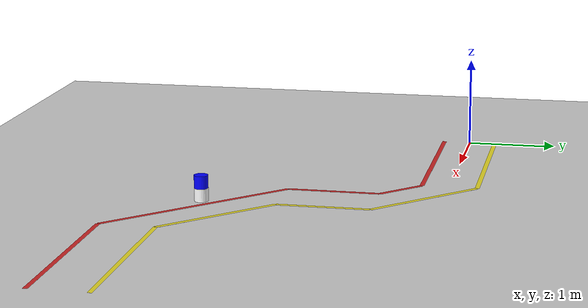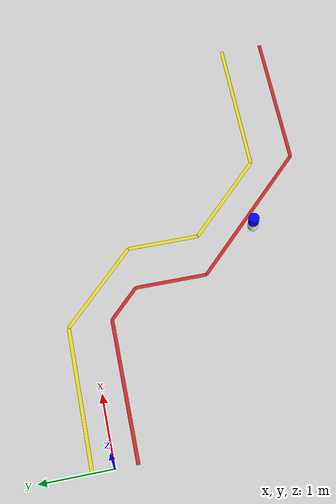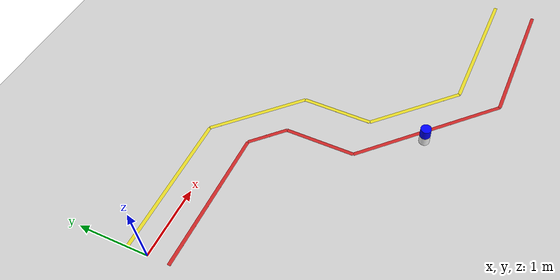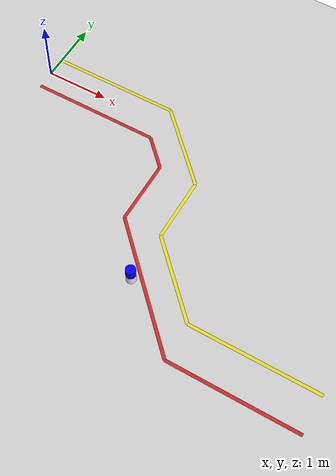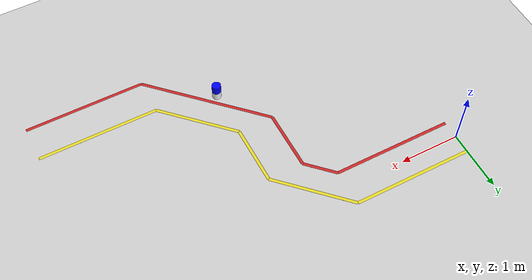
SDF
<sdf version="1.4">
    <world name="default">

        <scene>
            <ambient>0.4 0.4 0.4 1</ambient>
            <background>0.7 0.7 0.7 1</background>
            <shadows>true</shadows>
        </scene>

        <!-- A global light source -->
        <include>
            <uri>model://sun</uri>
        </include>

        <!-- A ground plane -->
        <include>
            <uri>model://ground_plane</uri>
        </include>

        <!-- My Road -->
        <include>
            <uri>model://path</uri>
        </include>

        <physics type="ode">
            <real_time_update_rate>1000.0</real_time_update_rate>
            <max_step_size>0.001</max_step_size>
            <real_time_factor>1</real_time_factor>
            <ode>
                <solver>
                    <type>quick</type>
                    <iters>150</iters>
                    <precon_iters>0</precon_iters>
                    <sor>1.400000</sor>
                    <use_dynamic_moi_rescaling>1</use_dynamic_moi_rescaling>
                </solver>
                <constraints>
                    <cfm>0.00001</cfm>
                    <erp>0.2</erp>
                    <contact_max_correcting_vel>2000.000000</contact_max_correcting_vel>
                    <contact_surface_layer>0.01000</contact_surface_layer>
                </constraints>
            </ode>
        </physics>
    </world>

</sdf>

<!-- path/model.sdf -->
<sdf version="1.6">
    <model name="line">
        <static>true</static>
        <link name="yellow_line_0">
            <pose frame=''>1 0.3 0.002 0 -0 0</pose>
            <collision name="collision">
                <geometry>
                    <plane>
                        <normal>0 0 1</normal>
                        <size>2 0.05</size>
                    </plane>
                </geometry>
                <surface>
                    <friction>
                        <ode>
                            <mu>100</mu>
                            <mu2>50</mu2>
                        </ode>
                    </friction>
                </surface>
            </collision>
            <visual name="visual_ground">
                <cast_shadows>false</cast_shadows>
                <geometry>
                    <plane>
                        <normal>0 0 1</normal>
                        <size>2 0.05</size>
                    </plane>
                </geometry>
                <material>
                    <script>
                        <uri>file://media/materials/scripts/gazebo.material</uri>
                        <name>Gazebo/Yellow</name>
                    </script>
                </material>
            </visual>
            <self_collide>0</self_collide>
            <kinematic>0</kinematic>
            <gravity>1</gravity>
        </link>
        <link name="yellow_line_1">
            <pose frame=''>2.5 -0.2 0.002 0 -0 -0.7854</pose>
            <collision name="collision">
                <geometry>
                    <plane>
                        <normal>0 0 1</normal>
                        <size>1.4142 0.05</size>
                    </plane>
                </geometry>
                <surface>
                    <friction>
                        <ode>
                            <mu>100</mu>
                            <mu2>50</mu2>
                        </ode>
                    </friction>
                </surface>
            </collision>
            <visual name="visual_ground">
                <cast_shadows>false</cast_shadows>
                <geometry>
                    <plane>
                        <normal>0 0 1</normal>
                        <size>1.4142 0.05</size>
                    </plane>
                </geometry>
                <material>
                    <script>
                        <uri>file://media/materials/scripts/gazebo.material</uri>
                        <name>Gazebo/Yellow</name>
                    </script>
                </material>
            </visual>
            <self_collide>0</self_collide>
            <kinematic>0</kinematic>
            <gravity>1</gravity>
        </link>
        <link name="yellow_line_2">
            <pose frame=''>3 -1.2 0.002 0 -0 -1.5708</pose>
            <collision name="collision">
                <geometry>
                    <plane>
                        <normal>0 0 1</normal>
                        <size>1 0.05</size>
                    </plane>
                </geometry>
                <surface>
                    <friction>
                        <ode>
                            <mu>100</mu>
                            <mu2>50</mu2>
                        </ode>
                    </friction>
                </surface>
            </collision>
            <visual name="visual_ground">
                <cast_shadows>false</cast_shadows>
                <geometry>
                    <plane>
                        <normal>0 0 1</normal>
                        <size>1 0.05</size>
                    </plane>
                </geometry>
                <material>
                    <script>
                        <uri>file://media/materials/scripts/gazebo.material</uri>
                        <name>Gazebo/Yellow</name>
                    </script>
                </material>
            </visual>
            <self_collide>0</self_collide>
            <kinematic>0</kinematic>
            <gravity>1</gravity>
        </link>
        <link name="yellow_line_3">
            <pose frame=''>3.5 -2.2 0.002 0 -0 -0.7854</pose>
            <collision name="collision">
                <geometry>
                    <plane>
                        <normal>0 0 1</normal>
                        <size>1.4142 0.05</size>
                    </plane>
                </geometry>
                <surface>
                    <friction>
                        <ode>
                            <mu>100</mu>
                            <mu2>50</mu2>
                        </ode>
                    </friction>
                </surface>
            </collision>
            <visual name="visual_ground">
                <cast_shadows>false</cast_shadows>
                <geometry>
                    <plane>
                        <normal>0 0 1</normal>
                        <size>1.4142 0.05</size>
                    </plane>
                </geometry>
                <material>
                    <script>
                        <uri>file://media/materials/scripts/gazebo.material</uri>
                        <name>Gazebo/Yellow</name>
                    </script>
                </material>
            </visual>
            <self_collide>0</self_collide>
            <kinematic>0</kinematic>
            <gravity>1</gravity>
        </link>
        <link name="yellow_line_4">
            <pose frame=''>5 -2.7 0.002 0 -0 0</pose>
            <collision name="collision">
                <geometry>
                    <plane>
                        <normal>0 0 1</normal>
                        <size>2 0.05</size>
                    </plane>
                </geometry>
                <surface>
                    <friction>
                        <ode>
                            <mu>100</mu>
                            <mu2>50</mu2>
                        </ode>
                    </friction>
                </surface>
            </collision>
            <visual name="visual_ground">
                <cast_shadows>false</cast_shadows>
                <geometry>
                    <plane>
                        <normal>0 0 1</normal>
                        <size>2 0.05</size>
                    </plane>
                </geometry>
                <material>
                    <script>
                        <uri>file://media/materials/scripts/gazebo.material</uri>
                        <name>Gazebo/Yellow</name>
                    </script>
                </material>
            </visual>
            <self_collide>0</self_collide>
            <kinematic>0</kinematic>
            <gravity>1</gravity>
        </link>
        <link name="red_line_0">
            <pose frame=''>1 -0.3 0.002 0 -0 0</pose>
            <collision name="collision">
                <geometry>
                    <plane>
                        <normal>0 0 1</normal>
                        <size>2 0.05</size>
                    </plane>
                </geometry>
                <surface>
                    <friction>
                        <ode>
                            <mu>100</mu>
                            <mu2>50</mu2>
                        </ode>
                    </friction>
                </surface>
            </collision>
            <visual name="visual_ground">
                <cast_shadows>false</cast_shadows>
                <geometry>
                    <plane>
                        <normal>0 0 1</normal>
                        <size>2 0.05</size>
                    </plane>
                </geometry>
                <material>
                    <script>
                        <uri>file://media/materials/scripts/gazebo.material</uri>
                        <name>Gazebo/Red</name>
                    </script>
                </material>
            </visual>
            <self_collide>0</self_collide>
            <kinematic>0</kinematic>
            <gravity>1</gravity>
        </link>
        <link name="red_line_1">
            <pose frame=''>2.2 -0.5 0.002 0 -0 -0.7854</pose>
            <collision name="collision">
                <geometry>
                    <plane>
                        <normal>0 0 1</normal>
                        <size>0.56568 0.05</size>
                    </plane>
                </geometry>
                <surface>
                    <friction>
                        <ode>
                            <mu>100</mu>
                            <mu2>50</mu2>
                        </ode>
                    </friction>
                </surface>
            </collision>
            <visual name="visual_ground">
                <cast_shadows>false</cast_shadows>
                <geometry>
                    <plane>
                        <normal>0 0 1</normal>
                        <size>0.56568 0.05</size>
                    </plane>
                </geometry>
                <material>
                    <script>
                        <uri>file://media/materials/scripts/gazebo.material</uri>
                        <name>Gazebo/Red</name>
                    </script>
                </material>
            </visual>
            <self_collide>0</self_collide>
            <kinematic>0</kinematic>
            <gravity>1</gravity>
        </link>
        <link name="red_line_2">
            <pose frame=''>2.4 -1.2 0.002 0 -0 -1.5708</pose>
            <collision name="collision">
                <geometry>
                    <plane>
                        <normal>0 0 1</normal>
                        <size>1 0.05</size>
                    </plane>
                </geometry>
                <surface>
                    <friction>
                        <ode>
                            <mu>100</mu>
                            <mu2>50</mu2>
                        </ode>
                    </friction>
                </surface>
            </collision>
            <visual name="visual_ground">
                <cast_shadows>false</cast_shadows>
                <geometry>
                    <plane>
                        <normal>0 0 1</normal>
                        <size>1 0.05</size>
                    </plane>
                </geometry>
                <material>
                    <script>
                        <uri>file://media/materials/scripts/gazebo.material</uri>
                        <name>Gazebo/Red</name>
                    </script>
                </material>
            </visual>
            <self_collide>0</self_collide>
            <kinematic>0</kinematic>
            <gravity>1</gravity>
        </link>
        <link name="red_line_3">
            <pose frame=''>3.2 -2.5 0.002 0 -0 -0.7854</pose>
            <collision name="collision">
                <geometry>
                    <plane>
                        <normal>0 0 1</normal>
                        <size>2.26272 0.05</size>
                    </plane>
                </geometry>
                <surface>
                    <friction>
                        <ode>
                            <mu>100</mu>
                            <mu2>50</mu2>
                        </ode>
                    </friction>
                </surface>
            </collision>
            <visual name="visual_ground">
                <cast_shadows>false</cast_shadows>
                <geometry>
                    <plane>
                        <normal>0 0 1</normal>
                        <size>2.26272 0.05</size>
                    </plane>
                </geometry>
                <material>
                    <script>
                        <uri>file://media/materials/scripts/gazebo.material</uri>
                        <name>Gazebo/Red</name>
                    </script>
                </material>
            </visual>
            <self_collide>0</self_collide>
            <kinematic>0</kinematic>
            <gravity>1</gravity>
        </link>
        <link name="red_line_4">
            <pose frame=''>5 -3.3 0.002 0 -0 0</pose>
            <collision name="collision">
                <geometry>
                    <plane>
                        <normal>0 0 1</normal>
                        <size>2 0.05</size>
                    </plane>
                </geometry>
                <surface>
                    <friction>
                        <ode>
                            <mu>100</mu>
                            <mu2>50</mu2>
                        </ode>
                    </friction>
                </surface>
            </collision>
            <visual name="visual_ground">
                <cast_shadows>false</cast_shadows>
                <geometry>
                    <plane>
                        <normal>0 0 1</normal>
                        <size>2 0.05</size>
                    </plane>
                </geometry>
                <material>
                    <script>
                        <uri>file://media/materials/scripts/gazebo.material</uri>
                        <name>Gazebo/Red</name>
                    </script>
                </material>
            </visual>
            <self_collide>0</self_collide>
            <kinematic>0</kinematic>
            <gravity>1</gravity>
        </link>
        <link name='chassis_lower'>
            <pose>3 -2.5 0.07 0 0 0</pose>

            <collision name='collision'>
                <geometry>
                    <cylinder>
                        <radius>.075</radius>
                        <length>.140</length>
                    </cylinder>
                </geometry>
            </collision>

            <visual name='visual'>
                <geometry>
                    <cylinder>
                        <radius>.075</radius>
                        <length>.140</length>
                    </cylinder>
                </geometry>
                <material>
                    <ambient>1 1 1 1</ambient>
                    <diffuse>1 1 1 1</diffuse>
                    <specular>0.1 0.1 0.1 1</specular>
                    <emissive>0 0 0 0</emissive>
                </material>
            </visual>
        </link>

        <link name='chassis_upper'>
            <pose>3 -2.5 0.21 0 0 0</pose>

            <collision name='collision'>
                <geometry>
                    <cylinder>
                        <radius>.075</radius>
                        <length>.140</length>
                    </cylinder>
                </geometry>
            </collision>

            <visual name='visual'>
                <geometry>
                    <cylinder>
                        <radius>.075</radius>
                        <length>.140</length>
                    </cylinder>
                </geometry>
                <material>
                    <ambient>0 0 1 1</ambient>
                    <diffuse>0 0 1 1</diffuse>
                    <specular>0.1 0.1 0.1 1</specular>
                    <emissive>0 0 0 0</emissive>
                </material>
            </visual>
        </link>
    </model>
</sdf>
